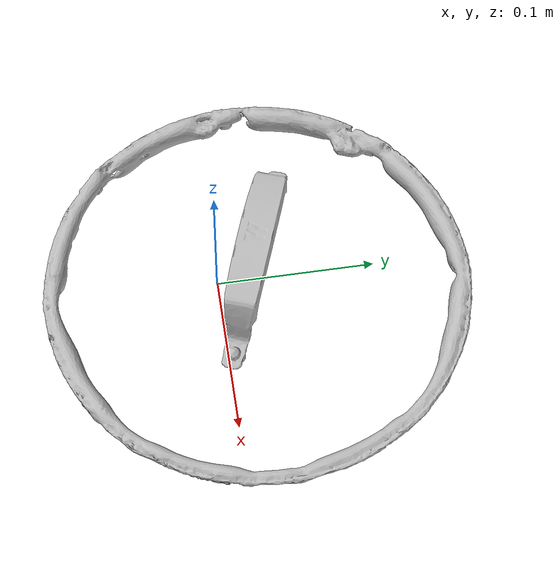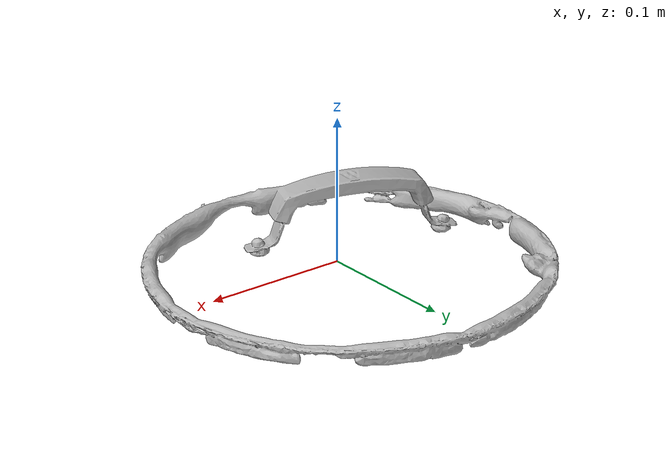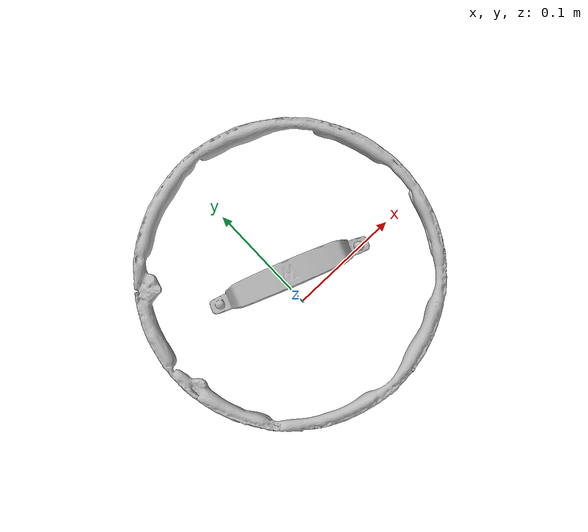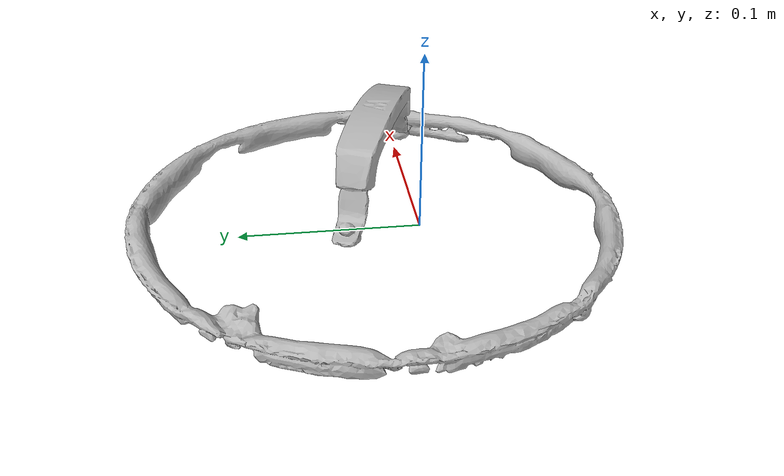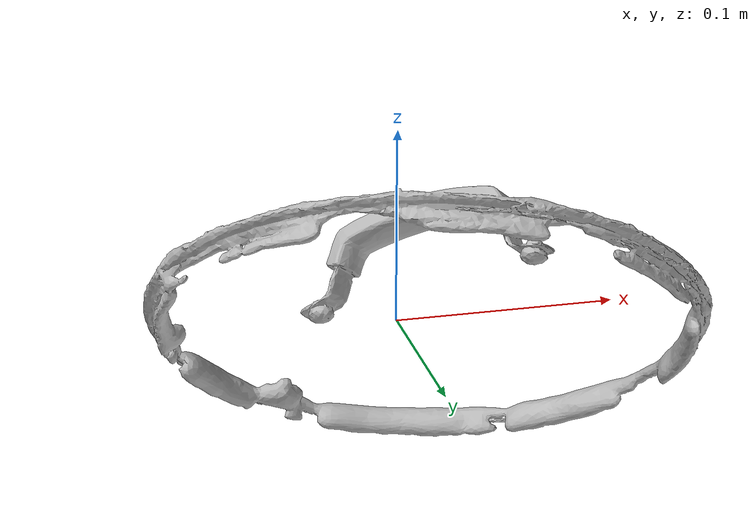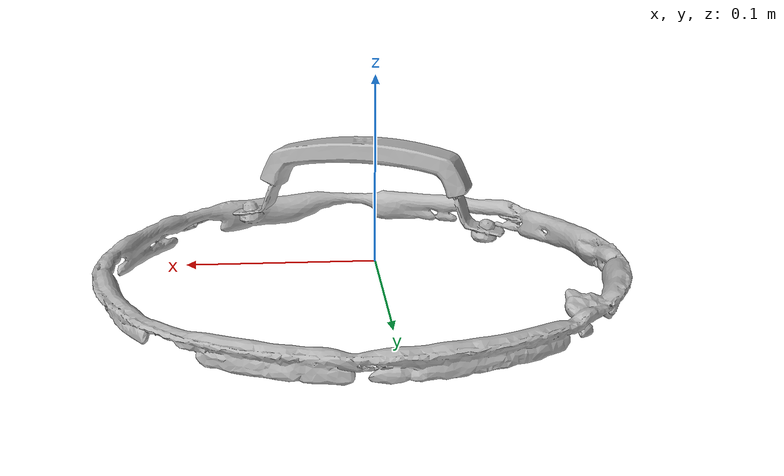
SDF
<?xml version='1.0'?>
<sdf version="1.4">
  <model name="skillet_lid">
    <static>false</static>
    <link name="link">
      <inertial>
        <pose>0.004614896458822956 0.028319651848624065 0.020098897676742826 -2.532001907955809 -1.561986332013324 1.578749698104965</pose>
        <mass>9.805221382448382e-05</mass>
        <inertia>
          <ixx>1.1814390050589973e-06</ixx>
          <ixy>1.7442461019689136e-24</ixy>
          <ixz>-2.7823089060784073e-25</ixz>
          <iyy>6.859627747664073e-07</iyy>
          <iyz>-8.842143821340959e-24</iyz>
          <izz>6.091910622917372e-07</izz>
        </inertia>
      </inertial>
      <collision name="collision">
        <geometry>
          <mesh>
            <!-- Use a downsampled mesh for collisions -->
            <uri>model://028_skillet_lid/google_16k/028_skillet_lid.obj</uri>
            </mesh>
        </geometry>
        <surface>
          <friction>
            <ode>
              <mu>0.9</mu>
              <mu2>0.9</mu2>
            </ode>
          </friction>
          <contact>
            <ode>
              <kp>1000000000000.0</kp>
              <kd>1</kd>
              <min_depth>0.0001</min_depth>
              <max_vel>0.01</max_vel>
            </ode>
          </contact>
          <bounce>
            <restitution_coefficient>0.1</restitution_coefficient>
            <threshold>1000.0</threshold>
          </bounce>
        </surface>
      </collision>
      <visual name="visual">
        <geometry>
          <mesh>
            <uri>model://028_skillet_lid/google_16k/028_skillet_lid.dae</uri>
            </mesh>
        </geometry>
      </visual>
    </link>
  </model>
</sdf>
